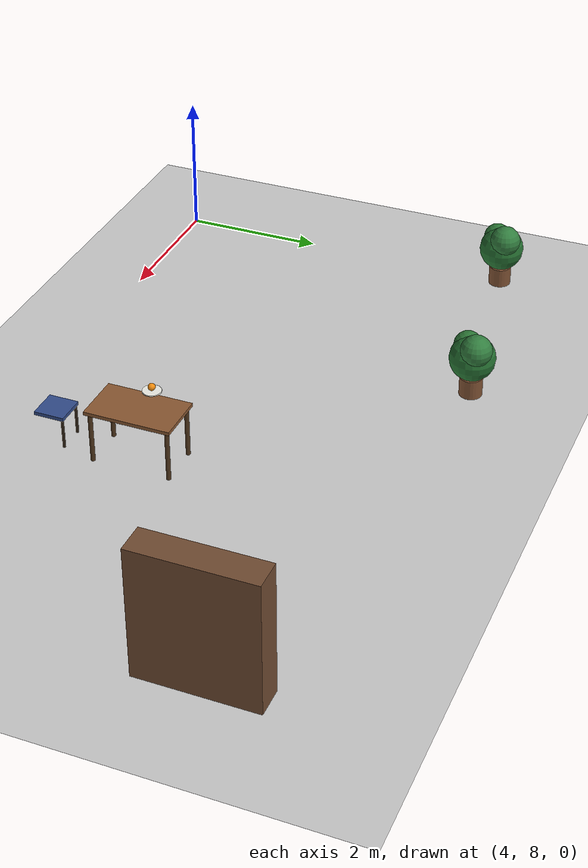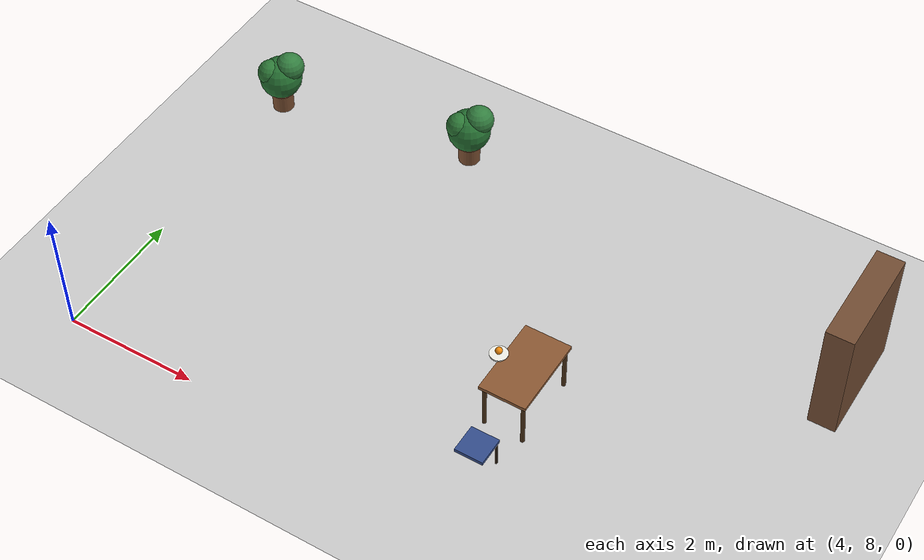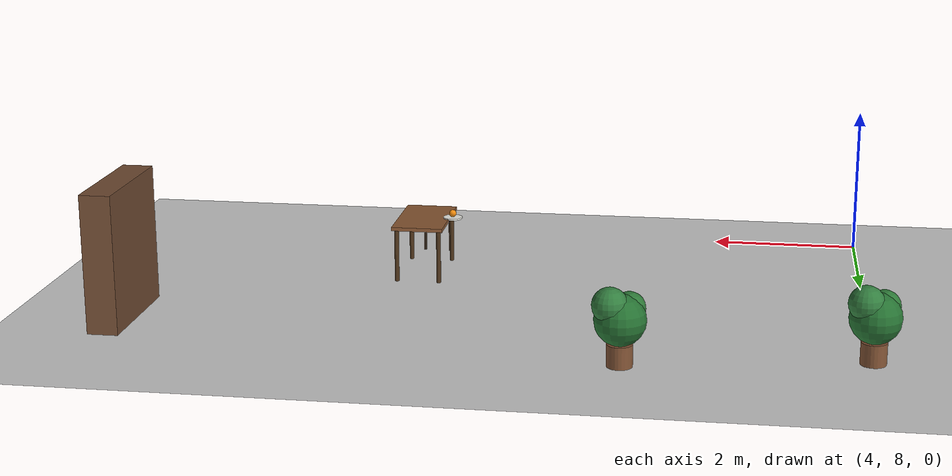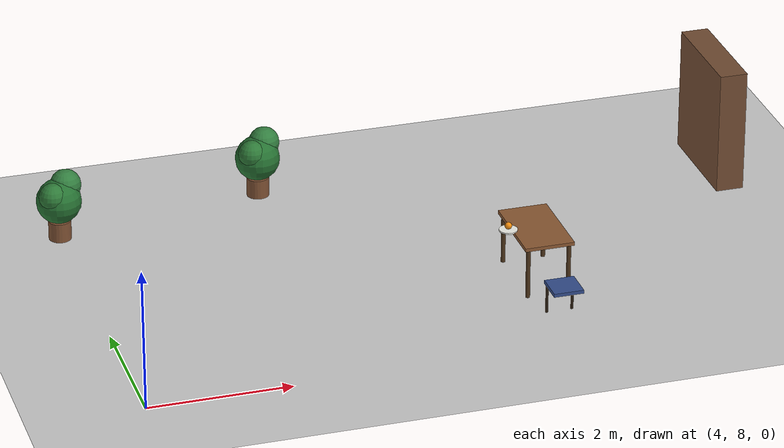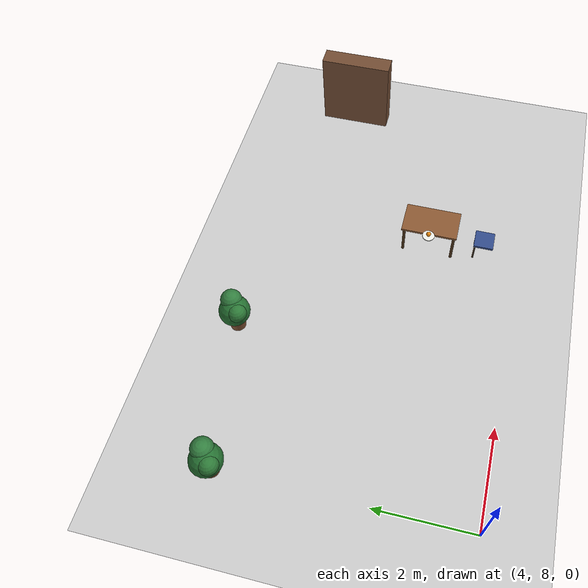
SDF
<sdf version="1.6">
 <world name="office_world">
  <include><uri>model://sun</uri></include>
  <include><uri>model://ground_plane</uri></include>
  <model name="plant_2_pot">
   <static>true</static>
   <pose>4 13 0.14 0 0 0</pose>
   <link name="link">
    <collision name="collision">
     <geometry><cylinder><radius>0.16</radius><length>0.28</length></cylinder></geometry>
    </collision>
    <visual name="visual">
     <geometry><cylinder><radius>0.16</radius><length>0.28</length></cylinder></geometry>
     <material><ambient>0.5 0.32 0.2 1</ambient><diffuse>0.5 0.32 0.2 1</diffuse></material>
    </visual>
   </link>
  </model>
  <model name="plant_2_foliage_1">
   <static>true</static>
   <pose>4 13 0.5800000000000001 0 0 0</pose>
   <link name="link">
    <collision name="collision"><geometry><sphere><radius>0.32</radius></sphere></geometry></collision>
    <visual name="visual">
     <geometry><sphere><radius>0.32</radius></sphere></geometry>
     <material><ambient>0.15 0.45 0.2 1</ambient><diffuse>0.15 0.45 0.2 1</diffuse></material>
    </visual>
   </link>
  </model>
  <model name="plant_2_foliage_2">
   <static>true</static>
   <pose>4.12 13.08 0.78 0 0 0</pose>
   <link name="link">
    <collision name="collision"><geometry><sphere><radius>0.22</radius></sphere></geometry></collision>
    <visual name="visual">
     <geometry><sphere><radius>0.22</radius></sphere></geometry>
     <material><ambient>0.2 0.5 0.25 1</ambient><diffuse>0.2 0.5 0.25 1</diffuse></material>
    </visual>
   </link>
  </model>
  <model name="plant_2_foliage_3">
   <static>true</static>
   <pose>3.9 12.9 0.7 0 0 0</pose>
   <link name="link">
    <collision name="collision"><geometry><sphere><radius>0.2</radius></sphere></geometry></collision>
    <visual name="visual">
     <geometry><sphere><radius>0.2</radius></sphere></geometry>
     <material><ambient>0.18 0.48 0.22 1</ambient><diffuse>0.18 0.48 0.22 1</diffuse></material>
    </visual>
   </link>
  </model>
  <model name="table_3_top">
   <static>true</static>
   <pose>10 10 0.75 0 0 1.5708</pose>
   <link name="link">
    <collision name="collision"><geometry><box><size>1.2 0.7 0.05</size></box></geometry></collision>
    <visual name="visual">
     <geometry><box><size>1.2 0.7 0.05</size></box></geometry>
     <material><ambient>0.55 0.35 0.2 1</ambient><diffuse>0.55 0.35 0.2 1</diffuse></material>
    </visual>
   </link>
  </model>
  <model name="table_3_leg_-1_-1">
   <static>true</static>
   <pose>10.2900019835288 9.460001065233122 0.3625 0 0 0</pose>
   <link name="link">
    <collision name="collision">
     <geometry><cylinder><radius>0.03</radius><length>0.725</length></cylinder></geometry>
    </collision>
    <visual name="visual">
     <geometry><cylinder><radius>0.03</radius><length>0.725</length></cylinder></geometry>
     <material><ambient>0.3 0.2 0.1 1</ambient><diffuse>0.3 0.2 0.1 1</diffuse></material>
    </visual>
   </link>
  </model>
  <model name="table_3_leg_-1_1">
   <static>true</static>
   <pose>9.710001983532713 9.459998934774163 0.3625 0 0 0</pose>
   <link name="link">
    <collision name="collision">
     <geometry><cylinder><radius>0.03</radius><length>0.725</length></cylinder></geometry>
    </collision>
    <visual name="visual">
     <geometry><cylinder><radius>0.03</radius><length>0.725</length></cylinder></geometry>
     <material><ambient>0.3 0.2 0.1 1</ambient><diffuse>0.3 0.2 0.1 1</diffuse></material>
    </visual>
   </link>
  </model>
  <model name="table_3_leg_1_-1">
   <static>true</static>
   <pose>10.289998016467287 10.540001065225837 0.3625 0 0 0</pose>
   <link name="link">
    <collision name="collision">
     <geometry><cylinder><radius>0.03</radius><length>0.725</length></cylinder></geometry>
    </collision>
    <visual name="visual">
     <geometry><cylinder><radius>0.03</radius><length>0.725</length></cylinder></geometry>
     <material><ambient>0.3 0.2 0.1 1</ambient><diffuse>0.3 0.2 0.1 1</diffuse></material>
    </visual>
   </link>
  </model>
  <model name="table_3_leg_1_1">
   <static>true</static>
   <pose>9.7099980164712 10.539998934766878 0.3625 0 0 0</pose>
   <link name="link">
    <collision name="collision">
     <geometry><cylinder><radius>0.03</radius><length>0.725</length></cylinder></geometry>
    </collision>
    <visual name="visual">
     <geometry><cylinder><radius>0.03</radius><length>0.725</length></cylinder></geometry>
     <material><ambient>0.3 0.2 0.1 1</ambient><diffuse>0.3 0.2 0.1 1</diffuse></material>
    </visual>
   </link>
  </model>
  <model name="chair_7_seat">
   <static>true</static>
   <pose>10 8.8 0.45 0 0 1.5708</pose>
   <link name="link">
    <collision name="collision"><geometry><box><size>0.42 0.42 0.05</size></box></geometry></collision>
    <visual name="visual">
     <geometry><box><size>0.42 0.42 0.05</size></box></geometry>
     <material><ambient>0.2 0.3 0.55 1</ambient><diffuse>0.2 0.3 0.55 1</diffuse></material>
    </visual>
   </link>
  </model>
  <model name="chair_7_leg_1_-1">
   <static>true</static>
   <pose>10.179999338821867 8.980000661175707 0.225 0 0 0</pose>
   <link name="link">
    <collision name="collision">
     <geometry><cylinder><radius>0.02</radius><length>0.45</length></cylinder></geometry>
    </collision>
    <visual name="visual">
     <geometry><cylinder><radius>0.02</radius><length>0.45</length></cylinder></geometry>
     <material><ambient>0.15 0.1 0.05 1</ambient><diffuse>0.15 0.1 0.05 1</diffuse></material>
    </visual>
   </link>
  </model>
  <model name="chair_7_leg_1_1">
   <static>true</static>
   <pose>9.819999338824294 8.979999338821868 0.225 0 0 0</pose>
   <link name="link">
    <collision name="collision">
     <geometry><cylinder><radius>0.02</radius><length>0.45</length></cylinder></geometry>
    </collision>
    <visual name="visual">
     <geometry><cylinder><radius>0.02</radius><length>0.45</length></cylinder></geometry>
     <material><ambient>0.15 0.1 0.05 1</ambient><diffuse>0.15 0.1 0.05 1</diffuse></material>
    </visual>
   </link>
  </model>
  <model name="shelf_1">
   <static>true</static>
   <pose>13.5 12.5 0.9 0 0 1.5708</pose>
   <link name="link">
    <collision name="collision"><geometry><box><size>1.6 0.4 1.8</size></box></geometry></collision>
    <visual name="visual">
     <geometry><box><size>1.6 0.4 1.8</size></box></geometry>
     <material><ambient>0.45 0.3 0.2 1</ambient><diffuse>0.45 0.3 0.2 1</diffuse></material>
    </visual>
   </link>
  </model>
  <model name="plant_3_pot">
   <static>true</static>
   <pose>7 13.5 0.14 0 0 0</pose>
   <link name="link">
    <collision name="collision">
     <geometry><cylinder><radius>0.16</radius><length>0.28</length></cylinder></geometry>
    </collision>
    <visual name="visual">
     <geometry><cylinder><radius>0.16</radius><length>0.28</length></cylinder></geometry>
     <material><ambient>0.5 0.32 0.2 1</ambient><diffuse>0.5 0.32 0.2 1</diffuse></material>
    </visual>
   </link>
  </model>
  <model name="plant_3_foliage_1">
   <static>true</static>
   <pose>7 13.5 0.5800000000000001 0 0 0</pose>
   <link name="link">
    <collision name="collision"><geometry><sphere><radius>0.32</radius></sphere></geometry></collision>
    <visual name="visual">
     <geometry><sphere><radius>0.32</radius></sphere></geometry>
     <material><ambient>0.15 0.45 0.2 1</ambient><diffuse>0.15 0.45 0.2 1</diffuse></material>
    </visual>
   </link>
  </model>
  <model name="plant_3_foliage_2">
   <static>true</static>
   <pose>7.12 13.58 0.78 0 0 0</pose>
   <link name="link">
    <collision name="collision"><geometry><sphere><radius>0.22</radius></sphere></geometry></collision>
    <visual name="visual">
     <geometry><sphere><radius>0.22</radius></sphere></geometry>
     <material><ambient>0.2 0.5 0.25 1</ambient><diffuse>0.2 0.5 0.25 1</diffuse></material>
    </visual>
   </link>
  </model>
  <model name="plant_3_foliage_3">
   <static>true</static>
   <pose>6.9 13.4 0.7 0 0 0</pose>
   <link name="link">
    <collision name="collision"><geometry><sphere><radius>0.2</radius></sphere></geometry></collision>
    <visual name="visual">
     <geometry><sphere><radius>0.2</radius></sphere></geometry>
     <material><ambient>0.18 0.48 0.22 1</ambient><diffuse>0.18 0.48 0.22 1</diffuse></material>
    </visual>
   </link>
  </model>
  <model name="food_5_plate">
   <static>true</static>
   <pose>9.6 10 0.78 0 0 0</pose>
   <link name="link">
    <visual name="visual">
     <geometry><cylinder><radius>0.13</radius><length>0.02</length></cylinder></geometry>
     <material><ambient>0.95 0.95 0.92 1</ambient><diffuse>0.95 0.95 0.92 1</diffuse></material>
    </visual>
   </link>
  </model>
  <model name="food_5_item">
   <static>true</static>
   <pose>9.6 10 0.8400000000000001 0 0 0</pose>
   <link name="link">
    <collision name="collision"><geometry><sphere><radius>0.05</radius></sphere></geometry></collision>
    <visual name="visual">
     <geometry><sphere><radius>0.05</radius></sphere></geometry>
     <material><ambient>0.95 0.55 0.05 1</ambient><diffuse>0.95 0.55 0.05 1</diffuse></material>
    </visual>
   </link>
  </model>
 </world>
</sdf>
